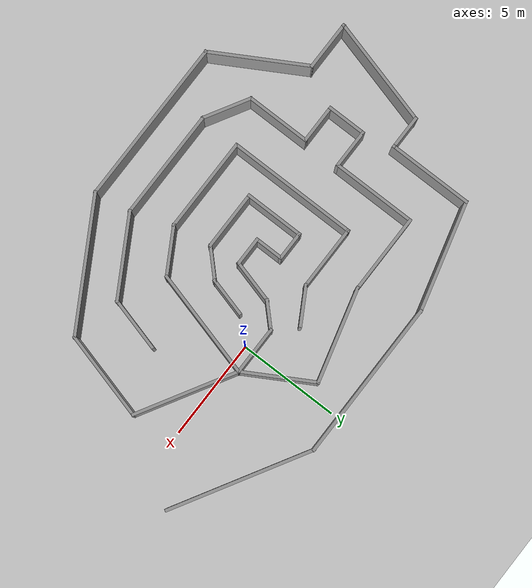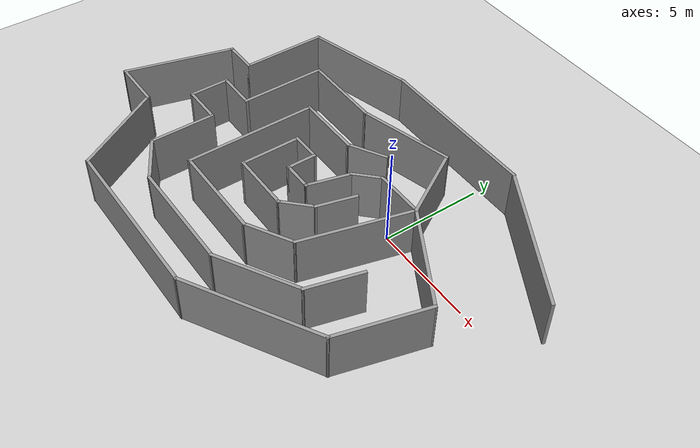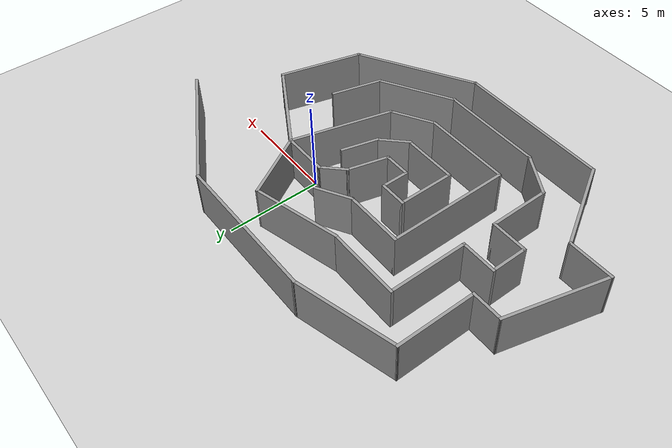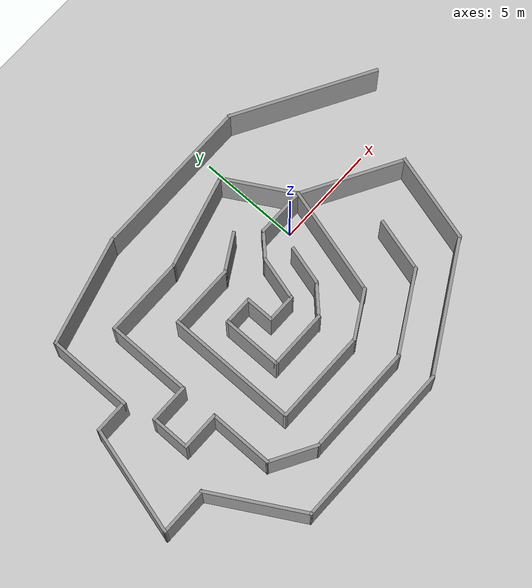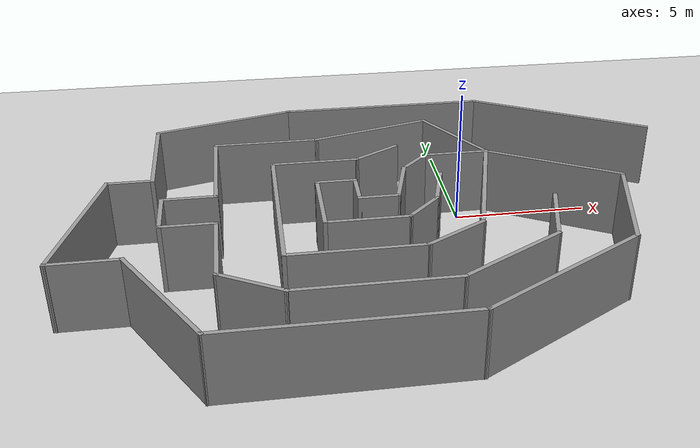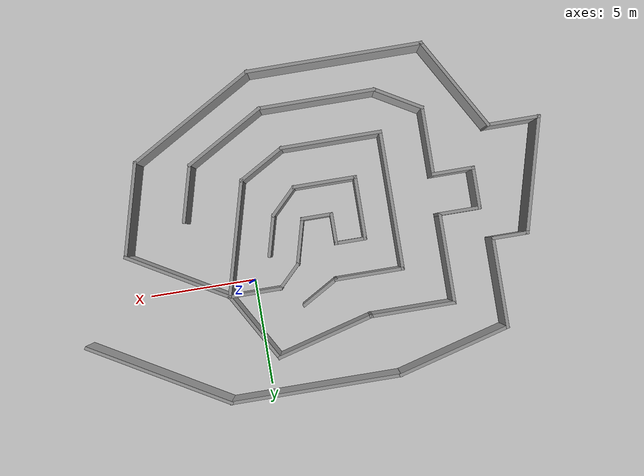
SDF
<sdf version="1.5">
 <world name="default">
  <include><static>1</static><uri>model://deep_parkour_2</uri></include>
  <physics name="ode_70iters" type="ode">
   <real_time_update_rate>1000</real_time_update_rate>
   <ode><solver><type>quick</type><iters>100</iters></solver></ode>
  </physics>
  <include><uri>model://ground_plane</uri></include>
  <include><uri>model://sun</uri></include>
  <light type="directional" name="my_light0">
   <pose>0 0 30 0 0 0</pose>
   <diffuse>0.5 0.5 0.5 1</diffuse>
   <specular>0.1 0.1 0.1 1</specular>
   <direction>0.1 0.1 -0.9</direction>
   <attenuation>
    <range>20</range>
    <linear>0.01</linear>
    <constant>0.5</constant>
    <quadratic>0.001</quadratic>
   </attenuation>
   <cast_shadows>0</cast_shadows>
  </light>
  <scene><ambient>0.0 0.0 0.0 1.0</ambient><shadows>0</shadows></scene>
 </world>
</sdf>

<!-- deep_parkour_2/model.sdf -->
<sdf version='1.6'>
  <model name='deep_parkour_2'>
    <pose frame=''>-3.07091 -2.09244 0 0 -0 0</pose>
    <link name='Wall_0'>
      <collision name='Wall_0_Collision'>
        <geometry>
          <box>
            <size>1.5 0.15 2.5</size>
          </box>
        </geometry>
        <pose frame=''>0 0 1.25 0 -0 0</pose>
      </collision>
      <visual name='Wall_0_Visual'>
        <pose frame=''>0 0 1.25 0 -0 0</pose>
        <geometry>
          <box>
            <size>1.5 0.15 2.5</size>
          </box>
        </geometry>
        <material>
          <script>
            <uri>file://media/materials/scripts/gazebo.material</uri>
            <name>Gazebo/Grey</name>
          </script>
          <ambient>1 1 1 1</ambient>
        </material>
        <meta>
          <layer>0</layer>
        </meta>
      </visual>
      <pose frame=''>-1.65409 0.992435 0 0 -0 0</pose>
    </link>
    <link name='Wall_1'>
      <collision name='Wall_1_Collision'>
        <geometry>
          <box>
            <size>1.5 0.15 2.5</size>
          </box>
        </geometry>
        <pose frame=''>0 0 1.25 0 -0 0</pose>
      </collision>
      <visual name='Wall_1_Visual'>
        <pose frame=''>0 0 1.25 0 -0 0</pose>
        <geometry>
          <box>
            <size>1.5 0.15 2.5</size>
          </box>
        </geometry>
        <material>
          <script>
            <uri>file://media/materials/scripts/gazebo.material</uri>
            <name>Gazebo/Grey</name>
          </script>
          <ambient>1 1 1 1</ambient>
        </material>
        <meta>
          <layer>0</layer>
        </meta>
      </visual>
      <pose frame=''>-0.979094 0.317435 0 0 -0 -1.5708</pose>
    </link>
    <link name='Wall_10'>
      <collision name='Wall_10_Collision'>
        <geometry>
          <box>
            <size>3 0.15 2.5</size>
          </box>
        </geometry>
        <pose frame=''>0 0 1.25 0 -0 0</pose>
      </collision>
      <visual name='Wall_10_Visual'>
        <pose frame=''>0 0 1.25 0 -0 0</pose>
        <geometry>
          <box>
            <size>3 0.15 2.5</size>
          </box>
        </geometry>
        <material>
          <script>
            <uri>file://media/materials/scripts/gazebo.material</uri>
            <name>Gazebo/Grey</name>
          </script>
          <ambient>1 1 1 1</ambient>
        </material>
        <meta>
          <layer>0</layer>
        </meta>
      </visual>
      <pose frame=''>-0.904094 -1.85756 0 0 -0 0</pose>
    </link>
    <link name='Wall_13'>
      <collision name='Wall_13_Collision'>
        <geometry>
          <box>
            <size>1.5 0.15 2.5</size>
          </box>
        </geometry>
        <pose frame=''>0 0 1.25 0 -0 0</pose>
      </collision>
      <visual name='Wall_13_Visual'>
        <pose frame=''>0 0 1.25 0 -0 0</pose>
        <geometry>
          <box>
            <size>1.5 0.15 2.5</size>
          </box>
        </geometry>
        <material>
          <script>
            <uri>file://media/materials/scripts/gazebo.material</uri>
            <name>Gazebo/Grey</name>
          </script>
          <ambient>1 1 1 1</ambient>
        </material>
        <meta>
          <layer>0</layer>
        </meta>
      </visual>
      <pose frame=''>-0.304094 -0.357565 0 0 -0 0</pose>
    </link>
    <link name='Wall_14'>
      <collision name='Wall_14_Collision'>
        <geometry>
          <box>
            <size>2.25 0.15 2.5</size>
          </box>
        </geometry>
        <pose frame=''>0 0 1.25 0 -0 0</pose>
      </collision>
      <visual name='Wall_14_Visual'>
        <pose frame=''>0 0 1.25 0 -0 0</pose>
        <geometry>
          <box>
            <size>2.25 0.15 2.5</size>
          </box>
        </geometry>
        <material>
          <script>
            <uri>file://media/materials/scripts/gazebo.material</uri>
            <name>Gazebo/Grey</name>
          </script>
          <ambient>1 1 1 1</ambient>
        </material>
        <meta>
          <layer>0</layer>
        </meta>
      </visual>
      <pose frame=''>0.642666 0.656657 0 0 -0 1.309</pose>
    </link>
    <link name='Wall_16'>
      <collision name='Wall_16_Collision'>
        <geometry>
          <box>
            <size>1.75 0.15 2.5</size>
          </box>
        </geometry>
        <pose frame=''>0 0 1.25 0 -0 0</pose>
      </collision>
      <visual name='Wall_16_Visual'>
        <pose frame=''>0 0 1.25 0 -0 0</pose>
        <geometry>
          <box>
            <size>1.75 0.15 2.5</size>
          </box>
        </geometry>
        <material>
          <script>
            <uri>file://media/materials/scripts/gazebo.material</uri>
            <name>Gazebo/Grey</name>
          </script>
          <ambient>1 1 1 1</ambient>
        </material>
        <meta>
          <layer>0</layer>
        </meta>
      </visual>
      <pose frame=''>1.08659 -1.29188 0 0 -0 0.785398</pose>
    </link>
    <link name='Wall_17'>
      <collision name='Wall_17_Collision'>
        <geometry>
          <box>
            <size>2 0.15 2.5</size>
          </box>
        </geometry>
        <pose frame=''>0 0 1.25 0 -0 0</pose>
      </collision>
      <visual name='Wall_17_Visual'>
        <pose frame=''>0 0 1.25 0 -0 0</pose>
        <geometry>
          <box>
            <size>2 0.15 2.5</size>
          </box>
        </geometry>
        <material>
          <script>
            <uri>file://media/materials/scripts/gazebo.material</uri>
            <name>Gazebo/Grey</name>
          </script>
          <ambient>1 1 1 1</ambient>
        </material>
        <meta>
          <layer>0</layer>
        </meta>
      </visual>
      <pose frame=''>1.89169 0.167287 0 0 -0 1.309</pose>
    </link>
    <link name='Wall_19'>
      <collision name='Wall_19_Collision'>
        <geometry>
          <box>
            <size>1.5 0.15 2.5</size>
          </box>
        </geometry>
        <pose frame=''>0 0 1.25 0 -0 0</pose>
      </collision>
      <visual name='Wall_19_Visual'>
        <pose frame=''>0 0 1.25 0 -0 0</pose>
        <geometry>
          <box>
            <size>1.5 0.15 2.5</size>
          </box>
        </geometry>
        <material>
          <script>
            <uri>file://media/materials/scripts/gazebo.material</uri>
            <name>Gazebo/Grey</name>
          </script>
          <ambient>1 1 1 1</ambient>
        </material>
        <meta>
          <layer>0</layer>
        </meta>
      </visual>
      <pose frame=''>1.39172 2.14818 0 0 -0 0.785398</pose>
    </link>
    <link name='Wall_20'>
      <collision name='Wall_20_Collision'>
        <geometry>
          <box>
            <size>2.5 0.15 2.5</size>
          </box>
        </geometry>
        <pose frame=''>0 0 1.25 0 -0 0</pose>
      </collision>
      <visual name='Wall_20_Visual'>
        <pose frame=''>0 0 1.25 0 -0 0</pose>
        <geometry>
          <box>
            <size>2.5 0.15 2.5</size>
          </box>
        </geometry>
        <material>
          <script>
            <uri>file://media/materials/scripts/gazebo.material</uri>
            <name>Gazebo/Grey</name>
          </script>
          <ambient>1 1 1 1</ambient>
        </material>
        <meta>
          <layer>0</layer>
        </meta>
      </visual>
      <pose frame=''>3.04402 2.62547 0 0 -0 0</pose>
    </link>
    <link name='Wall_21'>
      <collision name='Wall_21_Collision'>
        <geometry>
          <box>
            <size>5.5 0.15 2.5</size>
          </box>
        </geometry>
        <pose frame=''>0 0 1.25 0 -0 0</pose>
      </collision>
      <visual name='Wall_21_Visual'>
        <pose frame=''>0 0 1.25 0 -0 0</pose>
        <geometry>
          <box>
            <size>5.5 0.15 2.5</size>
          </box>
        </geometry>
        <material>
          <script>
            <uri>file://media/materials/scripts/gazebo.material</uri>
            <name>Gazebo/Grey</name>
          </script>
          <ambient>1 1 1 1</ambient>
        </material>
        <meta>
          <layer>0</layer>
        </meta>
      </visual>
      <pose frame=''>3.52668 0.041621 0 0 -0 -1.8326</pose>
    </link>
    <link name='Wall_22'>
      <collision name='Wall_22_Collision'>
        <geometry>
          <box>
            <size>2.5 0.15 2.5</size>
          </box>
        </geometry>
        <pose frame=''>0 0 1.25 0 -0 0</pose>
      </collision>
      <visual name='Wall_22_Visual'>
        <pose frame=''>0 0 1.25 0 -0 0</pose>
        <geometry>
          <box>
            <size>2.5 0.15 2.5</size>
          </box>
        </geometry>
        <material>
          <script>
            <uri>file://media/materials/scripts/gazebo.material</uri>
            <name>Gazebo/Grey</name>
          </script>
          <ambient>1 1 1 1</ambient>
        </material>
        <meta>
          <layer>0</layer>
        </meta>
      </visual>
      <pose frame=''>1.81676 -3.12973 0 0 -0 -2.61799</pose>
    </link>
    <link name='Wall_23'>
      <collision name='Wall_23_Collision'>
        <geometry>
          <box>
            <size>4.75 0.15 2.5</size>
          </box>
        </geometry>
        <pose frame=''>0 0 1.25 0 -0 0</pose>
      </collision>
      <visual name='Wall_23_Visual'>
        <pose frame=''>0 0 1.25 0 -0 0</pose>
        <geometry>
          <box>
            <size>4.75 0.15 2.5</size>
          </box>
        </geometry>
        <material>
          <script>
            <uri>file://media/materials/scripts/gazebo.material</uri>
            <name>Gazebo/Grey</name>
          </script>
          <ambient>1 1 1 1</ambient>
        </material>
        <meta>
          <layer>0</layer>
        </meta>
      </visual>
      <pose frame=''>-1.50082 -3.71723 0 0 -0 3.14159</pose>
    </link>
    <link name='Wall_24'>
      <collision name='Wall_24_Collision'>
        <geometry>
          <box>
            <size>6.5 0.15 2.5</size>
          </box>
        </geometry>
        <pose frame=''>0 0 1.25 0 -0 0</pose>
      </collision>
      <visual name='Wall_24_Visual'>
        <pose frame=''>0 0 1.25 0 -0 0</pose>
        <geometry>
          <box>
            <size>6.5 0.15 2.5</size>
          </box>
        </geometry>
        <material>
          <script>
            <uri>file://media/materials/scripts/gazebo.material</uri>
            <name>Gazebo/Grey</name>
          </script>
          <ambient>1 1 1 1</ambient>
        </material>
        <meta>
          <layer>0</layer>
        </meta>
      </visual>
      <pose frame=''>-3.80082 -0.54223 0 0 -0 1.5708</pose>
    </link>
    <link name='Wall_25'>
      <collision name='Wall_25_Collision'>
        <geometry>
          <box>
            <size>3.25 0.15 2.5</size>
          </box>
        </geometry>
        <pose frame=''>0 0 1.25 0 -0 0</pose>
      </collision>
      <visual name='Wall_25_Visual'>
        <pose frame=''>0 0 1.25 0 -0 0</pose>
        <geometry>
          <box>
            <size>3.25 0.15 2.5</size>
          </box>
        </geometry>
        <material>
          <script>
            <uri>file://media/materials/scripts/gazebo.material</uri>
            <name>Gazebo/Grey</name>
          </script>
          <ambient>1 1 1 1</ambient>
        </material>
        <meta>
          <layer>0</layer>
        </meta>
      </visual>
      <pose frame=''>-2.25082 2.63277 0 0 -0 0</pose>
    </link>
    <link name='Wall_26'>
      <collision name='Wall_26_Collision'>
        <geometry>
          <box>
            <size>2 0.15 2.5</size>
          </box>
        </geometry>
        <pose frame=''>0 0 1.25 0 -0 0</pose>
      </collision>
      <visual name='Wall_26_Visual'>
        <pose frame=''>0 0 1.25 0 -0 0</pose>
        <geometry>
          <box>
            <size>2 0.15 2.5</size>
          </box>
        </geometry>
        <material>
          <script>
            <uri>file://media/materials/scripts/gazebo.material</uri>
            <name>Gazebo/Grey</name>
          </script>
          <ambient>1 1 1 1</ambient>
        </material>
        <meta>
          <layer>0</layer>
        </meta>
      </visual>
      <pose frame=''>0.100252 3.09527 0 0 -0 0.523599</pose>
    </link>
    <link name='Wall_28'>
      <collision name='Wall_28_Collision'>
        <geometry>
          <box>
            <size>3.75 0.15 2.5</size>
          </box>
        </geometry>
        <pose frame=''>0 0 1.25 0 -0 0</pose>
      </collision>
      <visual name='Wall_28_Visual'>
        <pose frame=''>0 0 1.25 0 -0 0</pose>
        <geometry>
          <box>
            <size>3.75 0.15 2.5</size>
          </box>
        </geometry>
        <material>
          <script>
            <uri>file://media/materials/scripts/gazebo.material</uri>
            <name>Gazebo/Grey</name>
          </script>
          <ambient>1 1 1 1</ambient>
        </material>
        <meta>
          <layer>0</layer>
        </meta>
      </visual>
      <pose frame=''>3.31902 4.18432 0 0 -0 2.0944</pose>
    </link>
    <link name='Wall_29'>
      <collision name='Wall_29_Collision'>
        <geometry>
          <box>
            <size>4.75 0.15 2.5</size>
          </box>
        </geometry>
        <pose frame=''>0 0 1.25 0 -0 0</pose>
      </collision>
      <visual name='Wall_29_Visual'>
        <pose frame=''>0 0 1.25 0 -0 0</pose>
        <geometry>
          <box>
            <size>4.75 0.15 2.5</size>
          </box>
        </geometry>
        <material>
          <script>
            <uri>file://media/materials/scripts/gazebo.material</uri>
            <name>Gazebo/Grey</name>
          </script>
          <ambient>1 1 1 1</ambient>
        </material>
        <meta>
          <layer>0</layer>
        </meta>
      </visual>
      <pose frame=''>0.197391 5.14788 0 0 -0 -2.87979</pose>
    </link>
    <link name='Wall_30'>
      <collision name='Wall_30_Collision'>
        <geometry>
          <box>
            <size>4 0.15 2.5</size>
          </box>
        </geometry>
        <pose frame=''>0 0 1.25 0 -0 0</pose>
      </collision>
      <visual name='Wall_30_Visual'>
        <pose frame=''>0 0 1.25 0 -0 0</pose>
        <geometry>
          <box>
            <size>4 0.15 2.5</size>
          </box>
        </geometry>
        <material>
          <script>
            <uri>file://media/materials/scripts/gazebo.material</uri>
            <name>Gazebo/Grey</name>
          </script>
          <ambient>1 1 1 1</ambient>
        </material>
        <meta>
          <layer>0</layer>
        </meta>
      </visual>
      <pose frame=''>-3.94924 4.5526 0 0 -0 3.14159</pose>
    </link>
    <link name='Wall_32'>
      <collision name='Wall_32_Collision'>
        <geometry>
          <box>
            <size>4.25 0.15 2.5</size>
          </box>
        </geometry>
        <pose frame=''>0 0 1.25 0 -0 0</pose>
      </collision>
      <visual name='Wall_32_Visual'>
        <pose frame=''>0 0 1.25 0 -0 0</pose>
        <geometry>
          <box>
            <size>4.25 0.15 2.5</size>
          </box>
        </geometry>
        <material>
          <script>
            <uri>file://media/materials/scripts/gazebo.material</uri>
            <name>Gazebo/Grey</name>
          </script>
          <ambient>1 1 1 1</ambient>
        </material>
        <meta>
          <layer>0</layer>
        </meta>
      </visual>
      <pose frame=''>-5.87424 2.5026 0 0 -0 -1.5708</pose>
    </link>
    <link name='Wall_33'>
      <collision name='Wall_33_Collision'>
        <geometry>
          <box>
            <size>2 0.15 2.5</size>
          </box>
        </geometry>
        <pose frame=''>0 0 1.25 0 -0 0</pose>
      </collision>
      <visual name='Wall_33_Visual'>
        <pose frame=''>0 0 1.25 0 -0 0</pose>
        <geometry>
          <box>
            <size>2 0.15 2.5</size>
          </box>
        </geometry>
        <material>
          <script>
            <uri>file://media/materials/scripts/gazebo.material</uri>
            <name>Gazebo/Grey</name>
          </script>
          <ambient>1 1 1 1</ambient>
        </material>
        <meta>
          <layer>0</layer>
        </meta>
      </visual>
      <pose frame=''>-6.79924 0.452597 0 0 -0 3.14159</pose>
    </link>
    <link name='Wall_34'>
      <collision name='Wall_34_Collision'>
        <geometry>
          <box>
            <size>2 0.15 2.5</size>
          </box>
        </geometry>
        <pose frame=''>0 0 1.25 0 -0 0</pose>
      </collision>
      <visual name='Wall_34_Visual'>
        <pose frame=''>0 0 1.25 0 -0 0</pose>
        <geometry>
          <box>
            <size>2 0.15 2.5</size>
          </box>
        </geometry>
        <material>
          <script>
            <uri>file://media/materials/scripts/gazebo.material</uri>
            <name>Gazebo/Grey</name>
          </script>
          <ambient>1 1 1 1</ambient>
        </material>
        <meta>
          <layer>0</layer>
        </meta>
      </visual>
      <pose frame=''>-7.72424 -0.472403 0 0 -0 -1.5708</pose>
    </link>
    <link name='Wall_35'>
      <collision name='Wall_35_Collision'>
        <geometry>
          <box>
            <size>2 0.15 2.5</size>
          </box>
        </geometry>
        <pose frame=''>0 0 1.25 0 -0 0</pose>
      </collision>
      <visual name='Wall_35_Visual'>
        <pose frame=''>0 0 1.25 0 -0 0</pose>
        <geometry>
          <box>
            <size>2 0.15 2.5</size>
          </box>
        </geometry>
        <material>
          <script>
            <uri>file://media/materials/scripts/gazebo.material</uri>
            <name>Gazebo/Grey</name>
          </script>
          <ambient>1 1 1 1</ambient>
        </material>
        <meta>
          <layer>0</layer>
        </meta>
      </visual>
      <pose frame=''>-6.79924 -1.3974 0 0 -0 0</pose>
    </link>
    <link name='Wall_36'>
      <collision name='Wall_36_Collision'>
        <geometry>
          <box>
            <size>3.25 0.15 2.5</size>
          </box>
        </geometry>
        <pose frame=''>0 0 1.25 0 -0 0</pose>
      </collision>
      <visual name='Wall_36_Visual'>
        <pose frame=''>0 0 1.25 0 -0 0</pose>
        <geometry>
          <box>
            <size>3.25 0.15 2.5</size>
          </box>
        </geometry>
        <material>
          <script>
            <uri>file://media/materials/scripts/gazebo.material</uri>
            <name>Gazebo/Grey</name>
          </script>
          <ambient>1 1 1 1</ambient>
        </material>
        <meta>
          <layer>0</layer>
        </meta>
      </visual>
      <pose frame=''>-5.87424 -2.9474 0 0 -0 -1.5708</pose>
    </link>
    <link name='Wall_38'>
      <collision name='Wall_38_Collision'>
        <geometry>
          <box>
            <size>2.5 0.15 2.5</size>
          </box>
        </geometry>
        <pose frame=''>0 0 1.25 0 -0 0</pose>
      </collision>
      <visual name='Wall_38_Visual'>
        <pose frame=''>0 0 1.25 0 -0 0</pose>
        <geometry>
          <box>
            <size>2.5 0.15 2.5</size>
          </box>
        </geometry>
        <material>
          <script>
            <uri>file://media/materials/scripts/gazebo.material</uri>
            <name>Gazebo/Grey</name>
          </script>
          <ambient>1 1 1 1</ambient>
        </material>
        <meta>
          <layer>0</layer>
        </meta>
      </visual>
      <pose frame=''>-4.85666 -5.0849 0 0 -0 -0.523599</pose>
    </link>
    <link name='Wall_39'>
      <collision name='Wall_39_Collision'>
        <geometry>
          <box>
            <size>5.5 0.15 2.5</size>
          </box>
        </geometry>
        <pose frame=''>0 0 1.25 0 -0 0</pose>
      </collision>
      <visual name='Wall_39_Visual'>
        <pose frame=''>0 0 1.25 0 -0 0</pose>
        <geometry>
          <box>
            <size>5.5 0.15 2.5</size>
          </box>
        </geometry>
        <material>
          <script>
            <uri>file://media/materials/scripts/gazebo.material</uri>
            <name>Gazebo/Grey</name>
          </script>
          <ambient>1 1 1 1</ambient>
        </material>
        <meta>
          <layer>0</layer>
        </meta>
      </visual>
      <pose frame=''>-1.16408 -5.6724 0 0 -0 0</pose>
    </link>
    <link name='Wall_40'>
      <collision name='Wall_40_Collision'>
        <geometry>
          <box>
            <size>4.25 0.15 2.5</size>
          </box>
        </geometry>
        <pose frame=''>0 0 1.25 0 -0 0</pose>
      </collision>
      <visual name='Wall_40_Visual'>
        <pose frame=''>0 0 1.25 0 -0 0</pose>
        <geometry>
          <box>
            <size>4.25 0.15 2.5</size>
          </box>
        </geometry>
        <material>
          <script>
            <uri>file://media/materials/scripts/gazebo.material</uri>
            <name>Gazebo/Grey</name>
          </script>
          <ambient>1 1 1 1</ambient>
        </material>
        <meta>
          <layer>0</layer>
        </meta>
      </visual>
      <pose frame=''>3.28627 -4.6474 0 0 -0 0.523599</pose>
    </link>
    <link name='Wall_41'>
      <collision name='Wall_41_Collision'>
        <geometry>
          <box>
            <size>2.75 0.15 2.5</size>
          </box>
        </geometry>
        <pose frame=''>0 0 1.25 0 -0 0</pose>
      </collision>
      <visual name='Wall_41_Visual'>
        <pose frame=''>0 0 1.25 0 -0 0</pose>
        <geometry>
          <box>
            <size>2.75 0.15 2.5</size>
          </box>
        </geometry>
        <material>
          <script>
            <uri>file://media/materials/scripts/gazebo.material</uri>
            <name>Gazebo/Grey</name>
          </script>
          <ambient>1 1 1 1</ambient>
        </material>
        <meta>
          <layer>0</layer>
        </meta>
      </visual>
      <pose frame=''>5.39809 -2.3667 0 0 -0 1.309</pose>
    </link>
    <link name='Wall_43'>
      <collision name='Wall_43_Collision'>
        <geometry>
          <box>
            <size>5.25 0.15 2.5</size>
          </box>
        </geometry>
        <pose frame=''>0 0 1.25 0 -0 0</pose>
      </collision>
      <visual name='Wall_43_Visual'>
        <pose frame=''>0 0 1.25 0 -0 0</pose>
        <geometry>
          <box>
            <size>5.25 0.15 2.5</size>
          </box>
        </geometry>
        <material>
          <script>
            <uri>file://media/materials/scripts/gazebo.material</uri>
            <name>Gazebo/Grey</name>
          </script>
          <ambient>1 1 1 1</ambient>
        </material>
        <meta>
          <layer>0</layer>
        </meta>
      </visual>
      <pose frame=''>6.42739 1.35047 0 0 -0 -0.523599</pose>
    </link>
    <link name='Wall_44'>
      <collision name='Wall_44_Collision'>
        <geometry>
          <box>
            <size>4.5 0.15 2.5</size>
          </box>
        </geometry>
        <pose frame=''>0 0 1.25 0 -0 0</pose>
      </collision>
      <visual name='Wall_44_Visual'>
        <pose frame=''>0 0 1.25 0 -0 0</pose>
        <geometry>
          <box>
            <size>4.5 0.15 2.5</size>
          </box>
        </geometry>
        <material>
          <script>
            <uri>file://media/materials/scripts/gazebo.material</uri>
            <name>Gazebo/Grey</name>
          </script>
          <ambient>1 1 1 1</ambient>
        </material>
        <meta>
          <layer>0</layer>
        </meta>
      </visual>
      <pose frame=''>8.07282 -2.02542 0 0 -0 -1.8326</pose>
    </link>
    <link name='Wall_46'>
      <collision name='Wall_46_Collision'>
        <geometry>
          <box>
            <size>6.75 0.15 2.5</size>
          </box>
        </geometry>
        <pose frame=''>0 0 1.25 0 -0 0</pose>
      </collision>
      <visual name='Wall_46_Visual'>
        <pose frame=''>0 0 1.25 0 -0 0</pose>
        <geometry>
          <box>
            <size>6.75 0.15 2.5</size>
          </box>
        </geometry>
        <material>
          <script>
            <uri>file://media/materials/scripts/gazebo.material</uri>
            <name>Gazebo/Grey</name>
          </script>
          <ambient>1 1 1 1</ambient>
        </material>
        <meta>
          <layer>0</layer>
        </meta>
      </visual>
      <pose frame=''>4.652 -5.7763 0 0 -0 -2.61799</pose>
    </link>
    <link name='Wall_47'>
      <collision name='Wall_47_Collision'>
        <geometry>
          <box>
            <size>8.25 0.15 2.5</size>
          </box>
        </geometry>
        <pose frame=''>0 0 1.25 0 -0 0</pose>
      </collision>
      <visual name='Wall_47_Visual'>
        <pose frame=''>0 0 1.25 0 -0 0</pose>
        <geometry>
          <box>
            <size>8.25 0.15 2.5</size>
          </box>
        </geometry>
        <material>
          <script>
            <uri>file://media/materials/scripts/gazebo.material</uri>
            <name>Gazebo/Grey</name>
          </script>
          <ambient>1 1 1 1</ambient>
        </material>
        <meta>
          <layer>0</layer>
        </meta>
      </visual>
      <pose frame=''>-2.25588 -7.4263 0 0 -0 3.14159</pose>
    </link>
    <link name='Wall_48'>
      <collision name='Wall_48_Collision'>
        <geometry>
          <box>
            <size>5 0.15 2.5</size>
          </box>
        </geometry>
        <pose frame=''>0 0 1.25 0 -0 0</pose>
      </collision>
      <visual name='Wall_48_Visual'>
        <pose frame=''>0 0 1.25 0 -0 0</pose>
        <geometry>
          <box>
            <size>5 0.15 2.5</size>
          </box>
        </geometry>
        <material>
          <script>
            <uri>file://media/materials/scripts/gazebo.material</uri>
            <name>Gazebo/Grey</name>
          </script>
          <ambient>1 1 1 1</ambient>
        </material>
        <meta>
          <layer>0</layer>
        </meta>
      </visual>
      <pose frame=''>-7.51838 -5.32619 0 0 -0 2.0944</pose>
    </link>
    <link name='Wall_49'>
      <collision name='Wall_49_Collision'>
        <geometry>
          <box>
            <size>2.5 0.15 2.5</size>
          </box>
        </geometry>
        <pose frame=''>0 0 1.25 0 -0 0</pose>
      </collision>
      <visual name='Wall_49_Visual'>
        <pose frame=''>0 0 1.25 0 -0 0</pose>
        <geometry>
          <box>
            <size>2.5 0.15 2.5</size>
          </box>
        </geometry>
        <material>
          <script>
            <uri>file://media/materials/scripts/gazebo.material</uri>
            <name>Gazebo/Grey</name>
          </script>
          <ambient>1 1 1 1</ambient>
        </material>
        <meta>
          <layer>0</layer>
        </meta>
      </visual>
      <pose frame=''>-9.90588 -3.22608 0 0 -0 3.14159</pose>
    </link>
    <link name='Wall_5'>
      <collision name='Wall_5_Collision'>
        <geometry>
          <box>
            <size>3 0.15 2.5</size>
          </box>
        </geometry>
        <pose frame=''>0 0 1.25 0 -0 0</pose>
      </collision>
      <visual name='Wall_5_Visual'>
        <pose frame=''>0 0 1.25 0 -0 0</pose>
        <geometry>
          <box>
            <size>3 0.15 2.5</size>
          </box>
        </geometry>
        <material>
          <script>
            <uri>file://media/materials/scripts/gazebo.material</uri>
            <name>Gazebo/Grey</name>
          </script>
          <ambient>1 1 1 1</ambient>
        </material>
        <meta>
          <layer>0</layer>
        </meta>
      </visual>
      <pose frame=''>-2.32909 -0.432565 0 0 -0 -1.5708</pose>
    </link>
    <link name='Wall_50'>
      <collision name='Wall_50_Collision'>
        <geometry>
          <box>
            <size>5.5 0.15 2.5</size>
          </box>
        </geometry>
        <pose frame=''>0 0 1.25 0 -0 0</pose>
      </collision>
      <visual name='Wall_50_Visual'>
        <pose frame=''>0 0 1.25 0 -0 0</pose>
        <geometry>
          <box>
            <size>5.5 0.15 2.5</size>
          </box>
        </geometry>
        <material>
          <script>
            <uri>file://media/materials/scripts/gazebo.material</uri>
            <name>Gazebo/Grey</name>
          </script>
          <ambient>1 1 1 1</ambient>
        </material>
        <meta>
          <layer>0</layer>
        </meta>
      </visual>
      <pose frame=''>-10.3885 -0.64223 0 0 -0 1.309</pose>
    </link>
    <link name='Wall_52'>
      <collision name='Wall_52_Collision'>
        <geometry>
          <box>
            <size>1.75 0.15 2.5</size>
          </box>
        </geometry>
        <pose frame=''>0 0 1.25 0 -0 0</pose>
      </collision>
      <visual name='Wall_52_Visual'>
        <pose frame=''>0 0 1.25 0 -0 0</pose>
        <geometry>
          <box>
            <size>1.75 0.15 2.5</size>
          </box>
        </geometry>
        <material>
          <script>
            <uri>file://media/materials/scripts/gazebo.material</uri>
            <name>Gazebo/Grey</name>
          </script>
          <ambient>1 1 1 1</ambient>
        </material>
        <meta>
          <layer>0</layer>
        </meta>
      </visual>
      <pose frame=''>-8.8962 1.94162 0 0 -0 0</pose>
    </link>
    <link name='Wall_53'>
      <collision name='Wall_53_Collision'>
        <geometry>
          <box>
            <size>4.25 0.15 2.5</size>
          </box>
        </geometry>
        <pose frame=''>0 0 1.25 0 -0 0</pose>
      </collision>
      <visual name='Wall_53_Visual'>
        <pose frame=''>0 0 1.25 0 -0 0</pose>
        <geometry>
          <box>
            <size>4.25 0.15 2.5</size>
          </box>
        </geometry>
        <material>
          <script>
            <uri>file://media/materials/scripts/gazebo.material</uri>
            <name>Gazebo/Grey</name>
          </script>
          <ambient>1 1 1 1</ambient>
        </material>
        <meta>
          <layer>0</layer>
        </meta>
      </visual>
      <pose frame=''>-8.0962 3.99162 0 0 -0 1.5708</pose>
    </link>
    <link name='Wall_54'>
      <collision name='Wall_54_Collision'>
        <geometry>
          <box>
            <size>5.5 0.15 2.5</size>
          </box>
        </geometry>
        <pose frame=''>0 0 1.25 0 -0 0</pose>
      </collision>
      <visual name='Wall_54_Visual'>
        <pose frame=''>0 0 1.25 0 -0 0</pose>
        <geometry>
          <box>
            <size>5.5 0.15 2.5</size>
          </box>
        </geometry>
        <material>
          <script>
            <uri>file://media/materials/scripts/gazebo.material</uri>
            <name>Gazebo/Grey</name>
          </script>
          <ambient>1 1 1 1</ambient>
        </material>
        <meta>
          <layer>0</layer>
        </meta>
      </visual>
      <pose frame=''>-5.51235 6.73396 0 0 -0 0.261799</pose>
    </link>
    <link name='Wall_55'>
      <collision name='Wall_55_Collision'>
        <geometry>
          <box>
            <size>8 0.15 2.5</size>
          </box>
        </geometry>
        <pose frame=''>0 0 1.25 0 -0 0</pose>
      </collision>
      <visual name='Wall_55_Visual'>
        <pose frame=''>0 0 1.25 0 -0 0</pose>
        <geometry>
          <box>
            <size>8 0.15 2.5</size>
          </box>
        </geometry>
        <material>
          <script>
            <uri>file://media/materials/scripts/gazebo.material</uri>
            <name>Gazebo/Grey</name>
          </script>
          <ambient>1 1 1 1</ambient>
        </material>
        <meta>
          <layer>0</layer>
        </meta>
      </visual>
      <pose frame=''>0.996504 7.4263 0 0 -0 0</pose>
    </link>
    <link name='Wall_56'>
      <collision name='Wall_56_Collision'>
        <geometry>
          <box>
            <size>7.25 0.15 2.5</size>
          </box>
        </geometry>
        <pose frame=''>0 0 1.25 0 -0 0</pose>
      </collision>
      <visual name='Wall_56_Visual'>
        <pose frame=''>0 0 1.25 0 -0 0</pose>
        <geometry>
          <box>
            <size>7.25 0.15 2.5</size>
          </box>
        </geometry>
        <material>
          <script>
            <uri>file://media/materials/scripts/gazebo.material</uri>
            <name>Gazebo/Grey</name>
          </script>
          <ambient>1 1 1 1</ambient>
        </material>
        <meta>
          <layer>0</layer>
        </meta>
      </visual>
      <pose frame=''>7.99589 5.6513 0 0 -0 -0.523599</pose>
    </link>
    <static>1</static>
  </model>
</sdf>
